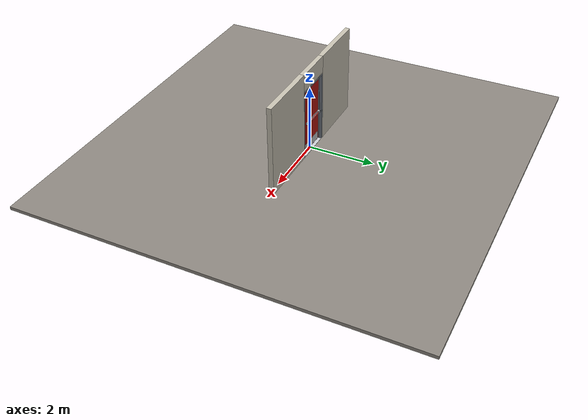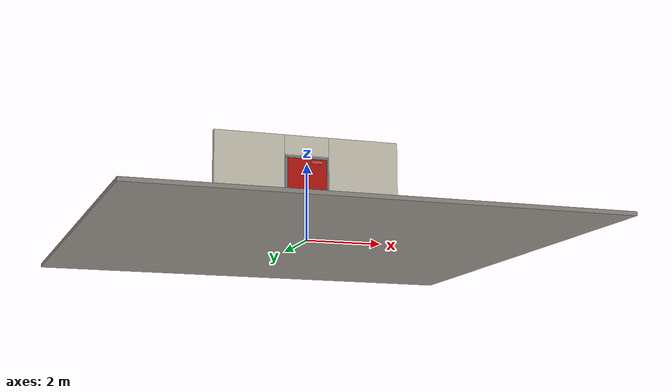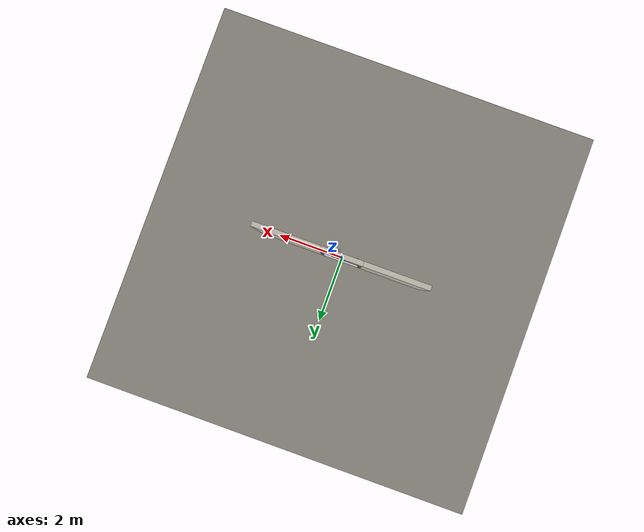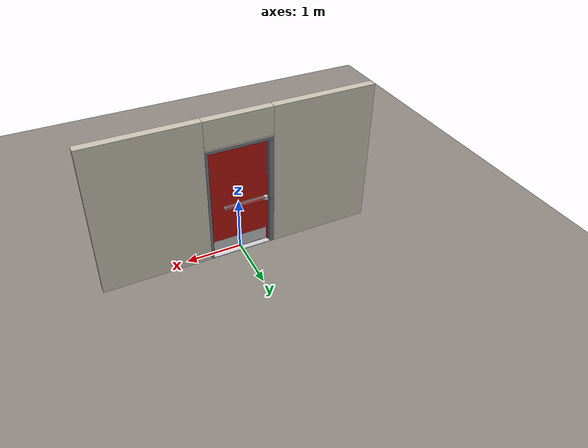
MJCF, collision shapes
<?xml version="1.0" ?>
<mujoco model="db0022_swing_single_simple">
  <compiler angle="radian" meshdir="../../hardware" texturedir="../../textures" autolimits="true" inertiafromgeom="false"/>
  <option timestep="0.002" integrator="implicitfast" cone="elliptic" impratio="10" noslip_iterations="3">
    <flag multiccd="enable"/>
  </option>
  <size memory="16M"/>
  <default>
    <geom condim="4" solref="0.005 1" solimp="0.95 0.99 0.001"/>
    <joint solreflimit="0.005 1" solimplimit="0.95 0.99 0.001"/>
    <tendon solreflimit="0.005 1"/>
    <equality solref="0.002 1"/>
  </default>
  <visual>
    <headlight ambient="0.4 0.4 0.4" diffuse="0.7 0.7 0.7" specular="0.2 0.2 0.2"/>
    <quality shadowsize="4096"/>
    <map znear="0.01" zfar="60"/>
  </visual>
  <asset>
    <mesh name="closer_body_fdc4667657" file="closer_body_fdc4667657.obj"/>
    <mesh name="hinge_ed08f20e7f" file="hinge_ed08f20e7f.obj"/>
    <mesh name="hinge_jamb_1278ce3e25" file="hinge_jamb_1278ce3e25.obj"/>
    <mesh name="pull_f8d79d6331" file="pull_f8d79d6331.obj"/>
    <mesh name="touchbar_pad_53c3bea3f4" file="touchbar_pad_53c3bea3f4.obj"/>
    <material name="mat_floor" rgba="0.55 0.53 0.5 1" specular="0.2" shininess="0.15" reflectance="0"/>
    <material name="mat_wall" rgba="0.78 0.76 0.7 1" specular="0.2" shininess="0.1" reflectance="0"/>
    <material name="mat_leaf" rgba="0.7 0.08 0.05 1" specular="0.23" shininess="0.41" reflectance="0.02"/>
    <material name="mat_hinge" rgba="0.65 0.66 0.68 1" specular="0.74" shininess="0.5" reflectance="0.36"/>
    <material name="mat_op_stainless" rgba="0.75 0.76 0.77 1" specular="0.8" shininess="0.65" reflectance="0.4"/>
    <material name="mat_bolt" rgba="0.75 0.76 0.77 1" specular="0.8" shininess="0.65" reflectance="0.4"/>
    <material name="mat_frame" rgba="0.45 0.48 0.52 1" specular="0.32" shininess="0.6" reflectance="0.08"/>
    <material name="mat_threshold" rgba="0.8 0.81 0.83 1" specular="0.8" shininess="0.6" reflectance="0.4"/>
    <material name="mat_closer" rgba="0.22 0.17 0.13 1" specular="0.8" shininess="0.6" reflectance="0.4"/>
    <material name="mat_kick" rgba="0.75 0.76 0.77 1" specular="0.8" shininess="0.65" reflectance="0.4"/>
    <material name="mat_exit_sign" rgba="0.85 0.1 0.1 1" specular="0.2" shininess="0.6" reflectance="0"/>
    <material name="mat_sign_bracket" rgba="0.8 0.81 0.83 1" specular="0.8" shininess="0.6" reflectance="0.4"/>
    <texture name="skybox" type="skybox" builtin="gradient" rgb1="0.6 0.7 0.85" rgb2="0.9 0.92 0.95" width="256" height="256"/>
  </asset>
  <worldbody>
    <light name="sun" pos="1.5 -2.5 4" dir="-0.3 0.5 -0.8" directional="true" diffuse="0.8 0.8 0.8" specular="0.3 0.3 0.3" castshadow="true"/>
    <light name="fill" pos="-1.5 2.5 3" dir="0.3 -0.5 -0.7" directional="true" diffuse="0.35 0.35 0.4" castshadow="false"/>
    <camera name="robot_view" pos="0 -2.594313 1.812087" xyaxes="1 0 0 0 0.26963 0.962964" fovy="52"/>
    <camera name="far_view" pos="0 2.681312 1.812087" xyaxes="-1 0 0 0 -0.26963 0.962964" fovy="52"/>
    <camera name="iso" pos="-2.004737 -2.172262 2.234138" xyaxes="0.741536 -0.670913 0 0.242917 0.268487 0.932151" fovy="46"/>
    <camera name="detail_handle" pos="-0.263 -0.897 1.245" xyaxes="0.97561 0.219512 0 -0.070934 0.315262 0.94635" fovy="38"/>
    <geom name="floor" type="box" size="6 6 0.05" pos="0 0 -0.05" material="mat_floor" group="0" contype="1" conaffinity="1" friction="0.8 0.005 0.0001" density="2400"/>
    <geom name="wall_left" type="box" size="0.9415 0.0725 1.3735" pos="-1.5585 0.0435 1.3735" material="mat_wall" group="0" contype="1" conaffinity="1" friction="0.6 0.005 0.0001" density="800"/>
    <geom name="wall_right" type="box" size="0.9565 0.0725 1.3735" pos="1.5435 0.0435 1.3735" material="mat_wall" group="0" contype="1" conaffinity="1" friction="0.6 0.005 0.0001" density="800"/>
    <geom name="wall_header" type="box" size="0.602 0.0725 0.26" pos="-0.015 0.0435 2.487" material="mat_wall" group="0" contype="1" conaffinity="1" friction="0.6 0.005 0.0001" density="800"/>
    <geom name="hinge_0_jamb" type="mesh" mesh="hinge_jamb_1278ce3e25" pos="0.534 -0.029 0.267" quat="0 0 1 0" material="mat_hinge" group="1" contype="0" conaffinity="0" density="7850"/>
    <geom name="hinge_1_jamb" type="mesh" mesh="hinge_jamb_1278ce3e25" pos="0.534 -0.029 0.832333" quat="0 0 1 0" material="mat_hinge" group="1" contype="0" conaffinity="0" density="7850"/>
    <geom name="hinge_2_jamb" type="mesh" mesh="hinge_jamb_1278ce3e25" pos="0.534 -0.029 1.397667" quat="0 0 1 0" material="mat_hinge" group="1" contype="0" conaffinity="0" density="7850"/>
    <geom name="hinge_3_jamb" type="mesh" mesh="hinge_jamb_1278ce3e25" pos="0.534 -0.029 1.963" quat="0 0 1 0" material="mat_hinge" group="1" contype="0" conaffinity="0" density="7850"/>
    <geom name="jamb_hinge" type="box" size="0.025 0.0725 1.0735" pos="0.562 0.0435 1.0735" material="mat_frame" group="0" contype="1" conaffinity="1" friction="0.6 0.005 0.0001" density="300"/>
    <geom name="strike_965_wall_n" type="box" size="0.04 0.0305 0.02" pos="-0.577 0.0855 0.965" material="mat_frame" group="0" contype="1" conaffinity="1" friction="0.6 0.005 0.0001" density="300"/>
    <geom name="strike_965_wall_p" type="box" size="0.04 0.008 0.02" pos="-0.577 0.025 0.965" material="mat_frame" group="0" contype="1" conaffinity="1" friction="0.6 0.005 0.0001" density="300"/>
    <geom name="strike_965_ramp" type="box" size="0.04 0.034482 0.02" pos="-0.585281 -0.0044 0.965" quat="0.989198 0 0 -0.146587" material="mat_frame" group="0" contype="1" conaffinity="1" friction="0.12 0.005 0.0001" density="300"/>
    <geom name="strike_965_back" type="box" size="0.0285 0.011 0.02" pos="-0.5885 0.044 0.965" material="mat_frame" group="0" contype="1" conaffinity="1" friction="0.6 0.005 0.0001" density="300"/>
    <geom name="jamb_strike_0" type="box" size="0.04 0.0725 0.4725" pos="-0.577 0.0435 0.4725" material="mat_frame" group="0" contype="1" conaffinity="1" friction="0.6 0.005 0.0001" density="300"/>
    <geom name="jamb_strike_1" type="box" size="0.04 0.0725 0.581" pos="-0.577 0.0435 1.566" material="mat_frame" group="0" contype="1" conaffinity="1" friction="0.6 0.005 0.0001" density="300"/>
    <geom name="jamb_head" type="box" size="0.602 0.0725 0.025" pos="-0.015 0.0435 2.172" material="mat_frame" group="0" contype="1" conaffinity="1" friction="0.6 0.005 0.0001" density="300"/>
    <geom name="head_stud" type="box" size="0.602 0.0725 0.015" pos="-0.015 0.0435 2.212" material="mat_wall" group="0" contype="1" conaffinity="1" friction="0.6 0.005 0.0001" density="500"/>
    <geom name="stop_hinge" type="box" size="0.0055 0.016 1.0735" pos="0.5315 0.0385 1.0735" material="mat_frame" group="0" contype="1" conaffinity="1" friction="0.6 0.005 0.0001" density="300"/>
    <geom name="stop_strike" type="box" size="0.0055 0.016 0.45875" pos="-0.5315 0.0385 0.45875" material="mat_frame" group="0" contype="1" conaffinity="1" friction="0.6 0.005 0.0001" density="300"/>
    <geom name="stop_strike_1" type="box" size="0.0055 0.016 0.56725" pos="-0.5315 0.0385 1.57975" material="mat_frame" group="0" contype="1" conaffinity="1" friction="0.6 0.005 0.0001" density="300"/>
    <geom name="stop_head" type="box" size="0.537 0.016 0.0055" pos="0 0.0385 2.1415" material="mat_frame" group="0" contype="1" conaffinity="1" friction="0.6 0.005 0.0001" density="300"/>
    <geom name="threshold" type="box" size="0.587 0.0725 0.0065" pos="0 0.0435 0.0065" material="mat_threshold" group="0" contype="1" conaffinity="1" friction="0.5 0.005 0.0001" density="2700"/>
    <site name="approach_point" pos="0 -1.5 0" quat="1 0 0 0" size="0.05" rgba="0.2 0.9 0.2 0.5" group="4"/>
    <site name="goal_point" pos="0 1.5 0" quat="1 0 0 0" size="0.05" rgba="0.2 0.9 0.2 0.5" group="4"/>
    <site name="door_plane_center" pos="0 0 1.0735" quat="1 0 0 0" size="0.02" rgba="0.2 0.9 0.2 0.5" group="4"/>
    <body name="leaf" pos="0.537 0 0">
      <inertial pos="-0.498553 -0.012693 1.218117" mass="61.424493" quat="0.462048 0.483732 0.527565 -0.523631" diaginertia="5.518358012 28.847448516 34.248118112"/>
      <joint name="leaf_hinge" type="hinge" axis="0 0 1" pos="-0.003 -0.029 0" limited="true" range="0 1.745329" damping="12.49954" frictionloss="0.909129" stiffness="15.508058" springref="-1.827437" armature="0.02"/>
      <geom name="leaf_slab" type="box" size="0.5335 0.022 1.063" pos="-0.5365 0 1.08" material="mat_leaf" group="0" contype="1" conaffinity="1" friction="0.4 0.005 0.0001" density="1"/>
      <geom name="hinge_0" type="mesh" mesh="hinge_ed08f20e7f" pos="-0.003 -0.029 0.267" quat="0 0 1 0" material="mat_hinge" group="1" contype="0" conaffinity="0" density="7850"/>
      <geom name="hinge_1" type="mesh" mesh="hinge_ed08f20e7f" pos="-0.003 -0.029 0.832333" quat="0 0 1 0" material="mat_hinge" group="1" contype="0" conaffinity="0" density="7850"/>
      <geom name="hinge_2" type="mesh" mesh="hinge_ed08f20e7f" pos="-0.003 -0.029 1.397667" quat="0 0 1 0" material="mat_hinge" group="1" contype="0" conaffinity="0" density="7850"/>
      <geom name="hinge_3" type="mesh" mesh="hinge_ed08f20e7f" pos="-0.003 -0.029 1.963" quat="0 0 1 0" material="mat_hinge" group="1" contype="0" conaffinity="0" density="7850"/>
      <geom name="leaf_exit_device_rail" type="box" size="0.366775 0.006 0.025" pos="-0.623225 0.028 0.965" material="mat_op_stainless" group="0" contype="1" conaffinity="1" friction="0.6 0.005 0.0001" density="3000"/>
      <geom name="leaf_exit_device_rail_end_n" type="box" size="0.01 0.0325 0.025" pos="-0.98 0.0545 0.965" material="mat_op_stainless" group="0" contype="1" conaffinity="1" friction="0.6 0.005 0.0001" density="3000"/>
      <geom name="leaf_exit_device_rail_end_p" type="box" size="0.01 0.0325 0.025" pos="-0.26645 0.0545 0.965" material="mat_op_stainless" group="0" contype="1" conaffinity="1" friction="0.6 0.005 0.0001" density="3000"/>
      <geom name="leaf_exit_device_case" type="box" size="0.034 0.034125 0.0375" pos="-1.024 0.056125 0.965" material="mat_op_stainless" group="0" contype="1" conaffinity="1" friction="0.6 0.005 0.0001" density="3000"/>
      <geom name="leaf_far_pull_n" type="mesh" mesh="pull_f8d79d6331" pos="-0.98 -0.022 0.965" quat="0 0 -0.707107 0.707107" material="mat_op_stainless" group="1" contype="0" conaffinity="0" density="3000"/>
      <geom name="leaf_far_pull_col_n" type="capsule" size="0.0125 0.13" pos="-0.98 -0.097 0.965" material="mat_op_stainless" group="3" contype="1" conaffinity="1" rgba="0.8 0.3 0.3 0.25" friction="0.7 0.01 0.0001" density="3000"/>
      <geom name="closer_body" type="mesh" mesh="closer_body_fdc4667657" pos="-0.3 -0.022 2.046" quat="0 0 -0.707107 0.707107" material="mat_closer" group="1" contype="0" conaffinity="0" density="2000"/>
      <geom name="closer_body_col" type="box" size="0.145 0.05 0.035" pos="-0.3 -0.072 2.046" material="mat_closer" group="3" contype="1" conaffinity="1" rgba="0.8 0.3 0.3 0.25" friction="0.6 0.005 0.0001" density="2000"/>
      <geom name="kick_plate_p" type="box" size="0.5035 0.0008 0.125" pos="-0.5365 0.0228 0.152" material="mat_kick" group="2" contype="0" conaffinity="0" density="7900"/>
      <site name="leaf_far_pull_grip_n" pos="-0.98 -0.097 0.965" quat="1 0 0 0" size="0.012" rgba="0.2 0.9 0.2 0.5" group="4"/>
      <site name="leaf_edge_mid" pos="-1.07 0 1.063" quat="1 0 0 0" size="0.02" rgba="0.2 0.9 0.2 0.5" group="4"/>
      <body name="leaf_exit_device" pos="-0.623225 0.022 0.965">
        <inertial pos="0 0.05 0" mass="5.569155" quat="0 0 0.707107 0.707107" diaginertia="0.001357482 0.219807588 0.220329696"/>
        <joint name="leaf_exit_device_slide" type="slide" axis="0 -1 0" limited="true" range="0 0.016" damping="165.686282" frictionloss="0.5" stiffness="1200" springref="-0.015" armature="0.15"/>
        <geom name="leaf_exit_device_pad" type="mesh" mesh="touchbar_pad_53c3bea3f4" pos="0 0 0" quat="0 0 0.707107 0.707107" material="mat_op_stainless" group="1" contype="0" conaffinity="0" density="3000"/>
        <geom name="leaf_exit_device_pad_col" type="box" size="0.343775 0.015 0.0225" pos="0 0.05 0" material="mat_op_stainless" group="3" contype="1" conaffinity="1" rgba="0.8 0.3 0.3 0.25" friction="0.8 0.01 0.0001" density="3000"/>
        <site name="leaf_exit_device_push" pos="0 0.065 0" quat="1 0 0 0" size="0.015" rgba="0.2 0.9 0.2 0.5" group="4"/>
      </body>
      <body name="leaf_latch_bolt" pos="-1.07 0.044 0.965">
        <inertial pos="0.0055 0 0" mass="0.102826" quat="0.92388 0.382683 0 0" diaginertia="0.000004365 0.000018287 0.000018287"/>
        <joint name="leaf_latch_bolt_slide" type="slide" axis="1 0 0" limited="true" range="0 0.019" damping="2" frictionloss="0.3" stiffness="800" springref="-0.01" armature="0.1"/>
        <geom name="leaf_latch_bolt_capsule" type="capsule" size="0.0095 0.015" pos="0.0055 0 0" quat="0.707107 0 -0.707107 0" material="mat_bolt" group="0" contype="1" conaffinity="1" friction="0.2 0.005 0.0001" density="8500"/>
      </body>
    </body>
  </worldbody>
  <tendon>
    <fixed name="leaf_latch_bolt_coupling" limited="true" range="0 10">
      <joint joint="leaf_latch_bolt_slide" coef="1"/>
      <joint joint="leaf_exit_device_slide" coef="-1.357143"/>
    </fixed>
  </tendon>
  <sensor>
    <jointpos name="leaf_hinge_pos" joint="leaf_hinge"/>
    <jointvel name="leaf_hinge_vel" joint="leaf_hinge"/>
    <jointpos name="leaf_exit_device_slide_pos" joint="leaf_exit_device_slide"/>
    <jointvel name="leaf_exit_device_slide_vel" joint="leaf_exit_device_slide"/>
    <jointpos name="leaf_latch_bolt_slide_pos" joint="leaf_latch_bolt_slide"/>
    <jointvel name="leaf_latch_bolt_slide_vel" joint="leaf_latch_bolt_slide"/>
  </sensor>
</mujoco>
